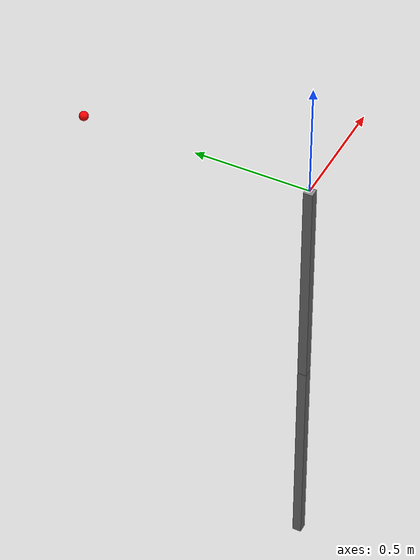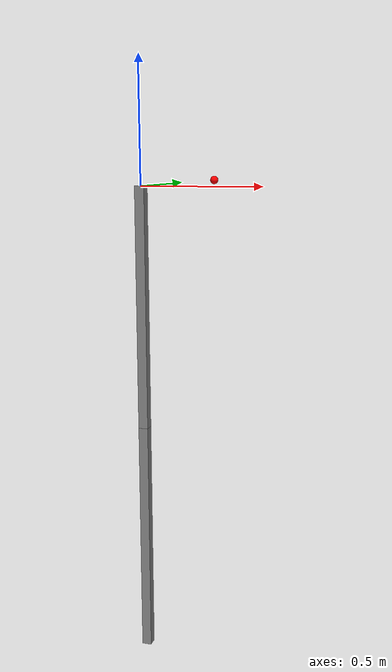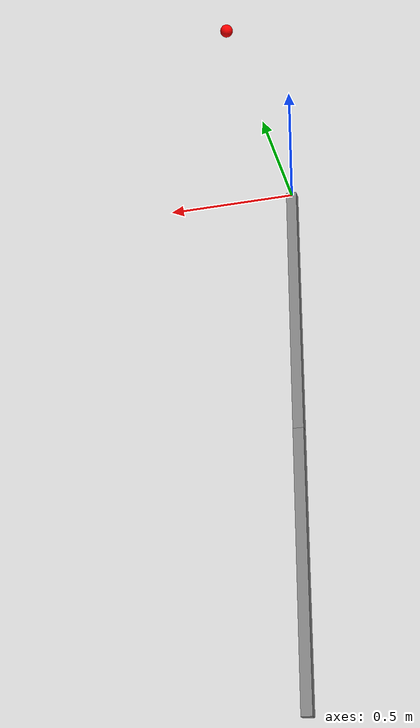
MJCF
<mujoco>
    <option gravity="0 0 -9.81">
        <flag contact="disable"/>
    </option>
    <worldbody>
        <light diffuse="0 0 0" pos="0 0 10" dir="0 0 -1"/>
        <!--geom type="plane" size="2.25 2.25 0.01" rgba="1 1 1 1"/-->
        <body name="b1" pos="0 0 0" euler="0 0 0">
            <joint name="j0" type="hinge" axis="0 1 0" pos="0 0 0"/>
            <geom type="box" pos="0 0 -.5" euler="0 0 0" size=".02 .02 .5"/>
            <body name="b2" pos="0 0 -1" euler="0 0 0">
                <joint name="j1" type="hinge" axis="0 1 0" pos="0 0 0"/>
                <geom type="box" pos="0 0 -.5" euler="0 0 0" size=".02 .02 .5"/>
                <body name="b3" pos="0 0 -1" euler="0 0 0" />
            </body>
        </body>

        <body name="marker1" pos="0 1 0" euler="0 0 0">
            <!--geom type="sphere" pos="0 0 0" size=".02" rgba='1 0 0 1' /-->
            <body name="marker2" pos="0 0 0" euler="0 0 0">
                <geom type="sphere" pos="0 0 0" size=".02" rgba='1 0 0 1' />
            </body>
            <body name="marker3" pos="0 0 0" euler="0 0 0">
                <geom type="sphere" pos="0 0 0" size=".02" rgba='1 0 0 1' />
            </body>
            <body name="marker4" pos="0 0 0" euler="0 0 0">
                <geom type="sphere" pos="0 0 0" size=".02" rgba='1 0 0 1' />
            </body>
            <body name="marker5" pos="0 0 0" euler="0 0 0">
                <geom type="sphere" pos="0 0 0" size=".02" rgba='1 0 0 1' />
            </body>
            <body name="marker6" pos="0 0 0" euler="0 0 0">
                <geom type="sphere" pos="0 0 0" size=".02" rgba='1 0 0 1' />
            </body>
            <body name="marker7" pos="0 0 0" euler="0 0 0">
                <geom type="sphere" pos="0 0 0" size=".02" rgba='1 0 0 1' />
            </body>
        </body>
    </worldbody>
    <actuator>
        <!--position name="position_servo" joint="j0" kp="100" kv="10"/-->
    </actuator>
</mujoco>
